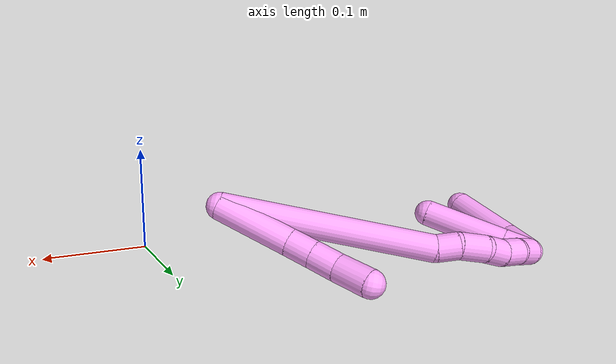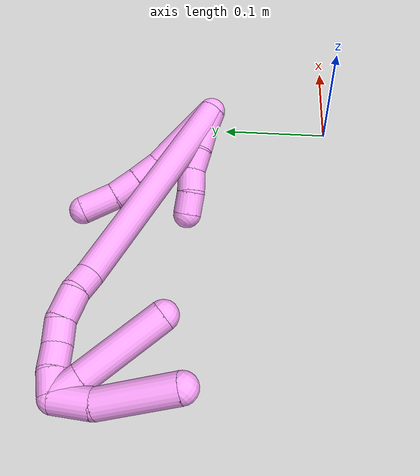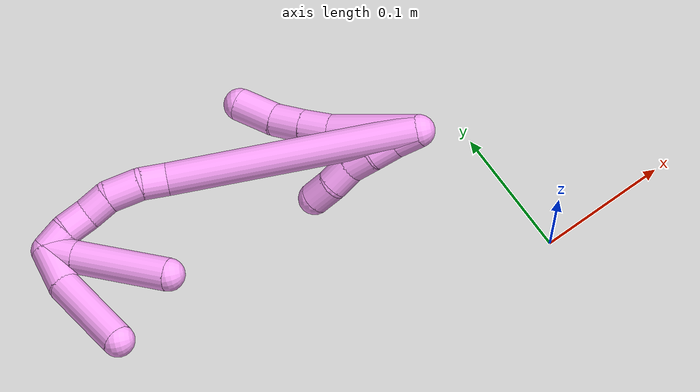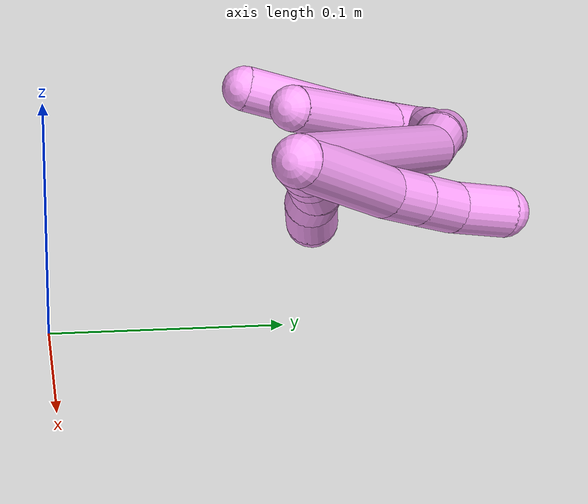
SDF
<sdf version="1.7">
 <world name="default">
  <model name="photoneo_s_sensor">
   <static>1</static>
   <pose>0 0 2 1.57079 1.57079 3.14159</pose>
   <link name="link">
    <inertial><mass>0.1</mass></inertial>
    <sensor name="sensor" type="depth">
     <update_rate>30</update_rate>
     <camera>
      <horizontal_fov>1.22</horizontal_fov>
      <image><width>1920</width><height>1200</height><format>B8G8R8</format></image>
      <clip><near>0.1</near><far>4</far></clip>
      <depth_camera><output>points</output></depth_camera>
     </camera>
     <plugin name="camera_plugin" filename="libgazebo_ros_depth_camera.so">
      <baseline>0.2</baseline>
      <alwaysOn>1</alwaysOn>
      <updateRate>0.0</updateRate>
      <cameraName>camera_ir</cameraName>
      <imageTopicName>/camera/color/image_raw</imageTopicName>
      <cameraInfoTopicName>/camera/color/camera_info</cameraInfoTopicName>
      <depthImageTopicName>/camera/depth/image_raw</depthImageTopicName>
      <depthImageCameraInfoTopicName>/camera/depth/camera_info</depthImageCameraInfoTopicName>
      <pointCloudTopicName>/camera/depth/points</pointCloudTopicName>
      <frameName>fr_optical</frameName>
      <pointCloudCutoff>0.1</pointCloudCutoff>
      <pointCloudCutoffMax>2.0</pointCloudCutoffMax>
      <distortionK1>0</distortionK1>
      <distortionK2>0</distortionK2>
      <distortionK3>0</distortionK3>
      <distortionT1>0</distortionT1>
      <distortionT2>0</distortionT2>
      <CxPrime>0</CxPrime>
      <Cx>0</Cx>
      <Cy>0</Cy>
      <focalLength>0</focalLength>
      <hackBaseline>0</hackBaseline>
     </plugin>
    </sensor>
   </link>
  </model>
  <model name="4">
   <static>0</static>
   <link name="4">
    <collision name="collision-cylinder-e_1_2_8">
     <pose>-0.010136 0.005351 0.033088 -0.160334 -0.29367 0.023763</pose>
     <geometry><cylinder><radius>0.0125</radius><length>0.070033</length></cylinder></geometry>
     <surface>
      <friction><ode><mu>1.16</mu><mu2>1.16</mu2><slip1>0</slip1><slip2>0</slip2></ode></friction>
      <contact><ode><kp>1e+06</kp><kd>1</kd><max_vel>0</max_vel><min_depth>0.001</min_depth></ode></contact>
     </surface>
    </collision>
    <visual name="visual-cylinder-e_1_2_8">
     <pose>-0.010136 0.005351 0.033088 -0.160334 -0.29367 0.023763</pose>
     <geometry><cylinder><radius>0.0125</radius><length>0.070033</length></cylinder></geometry>
     <material><ambient>1 0.65098 0.996078 1</ambient></material>
    </visual>
    <collision name="collision-cylinder-e_2_8_9">
     <pose>-0.023869 0.014289 0.076975 -0.320674 -0.306093 0.049883</pose>
     <geometry><cylinder><radius>0.0125</radius><length>0.02387</length></cylinder></geometry>
     <surface>
      <friction><ode><mu>1.16</mu><mu2>1.16</mu2><slip1>0</slip1><slip2>0</slip2></ode></friction>
      <contact><ode><kp>1e+06</kp><kd>1</kd><max_vel>0</max_vel><min_depth>0.001</min_depth></ode></contact>
     </surface>
    </collision>
    <visual name="visual-cylinder-e_2_8_9">
     <pose>-0.023869 0.014289 0.076975 -0.320674 -0.306093 0.049883</pose>
     <geometry><cylinder><radius>0.0125</radius><length>0.02387</length></cylinder></geometry>
     <material><ambient>1 0.65098 0.996078 1</ambient></material>
    </visual>
    <collision name="collision-cylinder-e_3_9_10">
     <pose>-0.031269 0.022006 0.09864 -0.363231 -0.316255 0.058549</pose>
     <geometry><cylinder><radius>0.0125</radius><length>0.024459</length></cylinder></geometry>
     <surface>
      <friction><ode><mu>1.16</mu><mu2>1.16</mu2><slip1>0</slip1><slip2>0</slip2></ode></friction>
      <contact><ode><kp>1e+06</kp><kd>1</kd><max_vel>0</max_vel><min_depth>0.001</min_depth></ode></contact>
     </surface>
    </collision>
    <visual name="visual-cylinder-e_3_9_10">
     <pose>-0.031269 0.022006 0.09864 -0.363231 -0.316255 0.058549</pose>
     <geometry><cylinder><radius>0.0125</radius><length>0.024459</length></cylinder></geometry>
     <material><ambient>1 0.65098 0.996078 1</ambient></material>
    </visual>
    <collision name="collision-cylinder-e_4_10_6">
     <pose>-0.039548 0.03413 0.1224 -0.55498 -0.286831 0.082219</pose>
     <geometry><cylinder><radius>0.0125</radius><length>0.031638</length></cylinder></geometry>
     <surface>
      <friction><ode><mu>1.16</mu><mu2>1.16</mu2><slip1>0</slip1><slip2>0</slip2></ode></friction>
      <contact><ode><kp>1e+06</kp><kd>1</kd><max_vel>0</max_vel><min_depth>0.001</min_depth></ode></contact>
     </surface>
    </collision>
    <visual name="visual-cylinder-e_4_10_6">
     <pose>-0.039548 0.03413 0.1224 -0.55498 -0.286831 0.082219</pose>
     <geometry><cylinder><radius>0.0125</radius><length>0.031638</length></cylinder></geometry>
     <material><ambient>1 0.65098 0.996078 1</ambient></material>
    </visual>
    <collision name="collision-cylinder-e_1_2_11">
     <pose>-0.001428 -0.002379 0.009607 0.24276 -0.143245 -0.017502</pose>
     <geometry><cylinder><radius>0.0125</radius><length>0.02</length></cylinder></geometry>
     <surface>
      <friction><ode><mu>1.16</mu><mu2>1.16</mu2><slip1>0</slip1><slip2>0</slip2></ode></friction>
      <contact><ode><kp>1e+06</kp><kd>1</kd><max_vel>0</max_vel><min_depth>0.001</min_depth></ode></contact>
     </surface>
    </collision>
    <visual name="visual-cylinder-e_1_2_11">
     <pose>-0.001428 -0.002379 0.009607 0.24276 -0.143245 -0.017502</pose>
     <geometry><cylinder><radius>0.0125</radius><length>0.02</length></cylinder></geometry>
     <material><ambient>1 0.65098 0.996078 1</ambient></material>
    </visual>
    <collision name="collision-cylinder-e_2_11_12">
     <pose>-0.00367 -0.007925 0.028665 0.323343 -0.081572 -0.013311</pose>
     <geometry><cylinder><radius>0.0125</radius><length>0.02</length></cylinder></geometry>
     <surface>
      <friction><ode><mu>1.16</mu><mu2>1.16</mu2><slip1>0</slip1><slip2>0</slip2></ode></friction>
      <contact><ode><kp>1e+06</kp><kd>1</kd><max_vel>0</max_vel><min_depth>0.001</min_depth></ode></contact>
     </surface>
    </collision>
    <visual name="visual-cylinder-e_2_11_12">
     <pose>-0.00367 -0.007925 0.028665 0.323343 -0.081572 -0.013311</pose>
     <geometry><cylinder><radius>0.0125</radius><length>0.02</length></cylinder></geometry>
     <material><ambient>1 0.65098 0.996078 1</ambient></material>
    </visual>
    <collision name="collision-cylinder-e_3_12_13">
     <pose>-0.006999 -0.014104 0.047314 0.316399 -0.254149 -0.040759</pose>
     <geometry><cylinder><radius>0.0125</radius><length>0.02</length></cylinder></geometry>
     <surface>
      <friction><ode><mu>1.16</mu><mu2>1.16</mu2><slip1>0</slip1><slip2>0</slip2></ode></friction>
      <contact><ode><kp>1e+06</kp><kd>1</kd><max_vel>0</max_vel><min_depth>0.001</min_depth></ode></contact>
     </surface>
    </collision>
    <visual name="visual-cylinder-e_3_12_13">
     <pose>-0.006999 -0.014104 0.047314 0.316399 -0.254149 -0.040759</pose>
     <geometry><cylinder><radius>0.0125</radius><length>0.02</length></cylinder></geometry>
     <material><ambient>1 0.65098 0.996078 1</ambient></material>
    </visual>
    <collision name="collision-cylinder-e_4_13_14">
     <pose>-0.011129 -0.022574 0.064733 0.586196 -0.16228 -0.049072</pose>
     <geometry><cylinder><radius>0.0125</radius><length>0.02</length></cylinder></geometry>
     <surface>
      <friction><ode><mu>1.16</mu><mu2>1.16</mu2><slip1>0</slip1><slip2>0</slip2></ode></friction>
      <contact><ode><kp>1e+06</kp><kd>1</kd><max_vel>0</max_vel><min_depth>0.001</min_depth></ode></contact>
     </surface>
    </collision>
    <visual name="visual-cylinder-e_4_13_14">
     <pose>-0.011129 -0.022574 0.064733 0.586196 -0.16228 -0.049072</pose>
     <geometry><cylinder><radius>0.0125</radius><length>0.02</length></cylinder></geometry>
     <material><ambient>1 0.65098 0.996078 1</ambient></material>
    </visual>
    <collision name="collision-cylinder-e_5_14_5">
     <pose>-0.016369 -0.032309 0.081235 0.476594 -0.370896 -0.09108</pose>
     <geometry><cylinder><radius>0.0125</radius><length>0.02</length></cylinder></geometry>
     <surface>
      <friction><ode><mu>1.16</mu><mu2>1.16</mu2><slip1>0</slip1><slip2>0</slip2></ode></friction>
      <contact><ode><kp>1e+06</kp><kd>1</kd><max_vel>0</max_vel><min_depth>0.001</min_depth></ode></contact>
     </surface>
    </collision>
    <visual name="visual-cylinder-e_5_14_5">
     <pose>-0.016369 -0.032309 0.081235 0.476594 -0.370896 -0.09108</pose>
     <geometry><cylinder><radius>0.0125</radius><length>0.02</length></cylinder></geometry>
     <material><ambient>1 0.65098 0.996078 1</ambient></material>
    </visual>
    <collision name="collision-cylinder-e_1_2_15">
     <pose>0.001097 2.4e-05 0.09615 -0.000248 0.01141 -1e-06</pose>
     <geometry><cylinder><radius>0.0125</radius><length>0.192313</length></cylinder></geometry>
     <surface>
      <friction><ode><mu>1.16</mu><mu2>1.16</mu2><slip1>0</slip1><slip2>0</slip2></ode></friction>
      <contact><ode><kp>1e+06</kp><kd>1</kd><max_vel>0</max_vel><min_depth>0.001</min_depth></ode></contact>
     </surface>
    </collision>
    <visual name="visual-cylinder-e_1_2_15">
     <pose>0.001097 2.4e-05 0.09615 -0.000248 0.01141 -1e-06</pose>
     <geometry><cylinder><radius>0.0125</radius><length>0.192313</length></cylinder></geometry>
     <material><ambient>1 0.65098 0.996078 1</ambient></material>
    </visual>
    <collision name="collision-cylinder-e_2_15_16">
     <pose>0.005502 0.000454 0.202102 -0.041441 0.325173 -0.006799</pose>
     <geometry><cylinder><radius>0.0125</radius><length>0.020706</length></cylinder></geometry>
     <surface>
      <friction><ode><mu>1.16</mu><mu2>1.16</mu2><slip1>0</slip1><slip2>0</slip2></ode></friction>
      <contact><ode><kp>1e+06</kp><kd>1</kd><max_vel>0</max_vel><min_depth>0.001</min_depth></ode></contact>
     </surface>
    </collision>
    <visual name="visual-cylinder-e_2_15_16">
     <pose>0.005502 0.000454 0.202102 -0.041441 0.325173 -0.006799</pose>
     <geometry><cylinder><radius>0.0125</radius><length>0.020706</length></cylinder></geometry>
     <material><ambient>1 0.65098 0.996078 1</ambient></material>
    </visual>
    <collision name="collision-cylinder-e_3_16_17">
     <pose>0.010328 -0.001467 0.224599 0.18133 0.117164 0.010664</pose>
     <geometry><cylinder><radius>0.0125</radius><length>0.025993</length></cylinder></geometry>
     <surface>
      <friction><ode><mu>1.16</mu><mu2>1.16</mu2><slip1>0</slip1><slip2>0</slip2></ode></friction>
      <contact><ode><kp>1e+06</kp><kd>1</kd><max_vel>0</max_vel><min_depth>0.001</min_depth></ode></contact>
     </surface>
    </collision>
    <visual name="visual-cylinder-e_3_16_17">
     <pose>0.010328 -0.001467 0.224599 0.18133 0.117164 0.010664</pose>
     <geometry><cylinder><radius>0.0125</radius><length>0.025993</length></cylinder></geometry>
     <material><ambient>1 0.65098 0.996078 1</ambient></material>
    </visual>
    <collision name="collision-cylinder-e_4_17_18">
     <pose>0.012535 -0.008709 0.246189 0.504815 0.067513 0.017418</pose>
     <geometry><cylinder><radius>0.0125</radius><length>0.02037</length></cylinder></geometry>
     <surface>
      <friction><ode><mu>1.16</mu><mu2>1.16</mu2><slip1>0</slip1><slip2>0</slip2></ode></friction>
      <contact><ode><kp>1e+06</kp><kd>1</kd><max_vel>0</max_vel><min_depth>0.001</min_depth></ode></contact>
     </surface>
    </collision>
    <visual name="visual-cylinder-e_4_17_18">
     <pose>0.012535 -0.008709 0.246189 0.504815 0.067513 0.017418</pose>
     <geometry><cylinder><radius>0.0125</radius><length>0.02037</length></cylinder></geometry>
     <material><ambient>1 0.65098 0.996078 1</ambient></material>
    </visual>
    <collision name="collision-cylinder-e_5_18_19">
     <pose>0.01624 -0.017762 0.263915 0.43817 0.300091 0.067298</pose>
     <geometry><cylinder><radius>0.0125</radius><length>0.020418</length></cylinder></geometry>
     <surface>
      <friction><ode><mu>1.16</mu><mu2>1.16</mu2><slip1>0</slip1><slip2>0</slip2></ode></friction>
      <contact><ode><kp>1e+06</kp><kd>1</kd><max_vel>0</max_vel><min_depth>0.001</min_depth></ode></contact>
     </surface>
    </collision>
    <visual name="visual-cylinder-e_5_18_19">
     <pose>0.01624 -0.017762 0.263915 0.43817 0.300091 0.067298</pose>
     <geometry><cylinder><radius>0.0125</radius><length>0.020418</length></cylinder></geometry>
     <material><ambient>1 0.65098 0.996078 1</ambient></material>
    </visual>
    <collision name="collision-cylinder-e_6_19_1">
     <pose>0.021678 -0.027933 0.280478 0.662614 0.242024 0.083613</pose>
     <geometry><cylinder><radius>0.0125</radius><length>0.0202</length></cylinder></geometry>
     <surface>
      <friction><ode><mu>1.16</mu><mu2>1.16</mu2><slip1>0</slip1><slip2>0</slip2></ode></friction>
      <contact><ode><kp>1e+06</kp><kd>1</kd><max_vel>0</max_vel><min_depth>0.001</min_depth></ode></contact>
     </surface>
    </collision>
    <visual name="visual-cylinder-e_6_19_1">
     <pose>0.021678 -0.027933 0.280478 0.662614 0.242024 0.083613</pose>
     <geometry><cylinder><radius>0.0125</radius><length>0.0202</length></cylinder></geometry>
     <material><ambient>1 0.65098 0.996078 1</ambient></material>
    </visual>
    <collision name="collision-cylinder-e_1_1_20">
     <pose>0.026958 -0.038087 0.277111 2.78593 0.236947 1.16991</pose>
     <geometry><cylinder><radius>0.0125</radius><length>0.024358</length></cylinder></geometry>
     <surface>
      <friction><ode><mu>1.16</mu><mu2>1.16</mu2><slip1>0</slip1><slip2>0</slip2></ode></friction>
      <contact><ode><kp>1e+06</kp><kd>1</kd><max_vel>0</max_vel><min_depth>0.001</min_depth></ode></contact>
     </surface>
    </collision>
    <visual name="visual-cylinder-e_1_1_20">
     <pose>0.026958 -0.038087 0.277111 2.78593 0.236947 1.16991</pose>
     <geometry><cylinder><radius>0.0125</radius><length>0.024358</length></cylinder></geometry>
     <material><ambient>1 0.65098 0.996078 1</ambient></material>
    </visual>
    <collision name="collision-cylinder-e_2_20_4">
     <pose>0.038833 -0.05396 0.231213 2.81596 0.240723 1.26931</pose>
     <geometry><cylinder><radius>0.0125</radius><length>0.075642</length></cylinder></geometry>
     <surface>
      <friction><ode><mu>1.16</mu><mu2>1.16</mu2><slip1>0</slip1><slip2>0</slip2></ode></friction>
      <contact><ode><kp>1e+06</kp><kd>1</kd><max_vel>0</max_vel><min_depth>0.001</min_depth></ode></contact>
     </surface>
    </collision>
    <visual name="visual-cylinder-e_2_20_4">
     <pose>0.038833 -0.05396 0.231213 2.81596 0.240723 1.26931</pose>
     <geometry><cylinder><radius>0.0125</radius><length>0.075642</length></cylinder></geometry>
     <material><ambient>1 0.65098 0.996078 1</ambient></material>
    </visual>
    <collision name="collision-cylinder-e_1_1_21">
     <pose>0.03191 -0.047346 0.282561 1.97019 0.493386 0.725635</pose>
     <geometry><cylinder><radius>0.0125</radius><length>0.032983</length></cylinder></geometry>
     <surface>
      <friction><ode><mu>1.16</mu><mu2>1.16</mu2><slip1>0</slip1><slip2>0</slip2></ode></friction>
      <contact><ode><kp>1e+06</kp><kd>1</kd><max_vel>0</max_vel><min_depth>0.001</min_depth></ode></contact>
     </surface>
    </collision>
    <visual name="visual-cylinder-e_1_1_21">
     <pose>0.03191 -0.047346 0.282561 1.97019 0.493386 0.725635</pose>
     <geometry><cylinder><radius>0.0125</radius><length>0.032983</length></cylinder></geometry>
     <material><ambient>1 0.65098 0.996078 1</ambient></material>
    </visual>
    <collision name="collision-cylinder-e_2_21_3">
     <pose>0.056341 -0.082174 0.25725 2.31283 0.519021 1.08614</pose>
     <geometry><cylinder><radius>0.0125</radius><length>0.067017</length></cylinder></geometry>
     <surface>
      <friction><ode><mu>1.16</mu><mu2>1.16</mu2><slip1>0</slip1><slip2>0</slip2></ode></friction>
      <contact><ode><kp>1e+06</kp><kd>1</kd><max_vel>0</max_vel><min_depth>0.001</min_depth></ode></contact>
     </surface>
    </collision>
    <visual name="visual-cylinder-e_2_21_3">
     <pose>0.056341 -0.082174 0.25725 2.31283 0.519021 1.08614</pose>
     <geometry><cylinder><radius>0.0125</radius><length>0.067017</length></cylinder></geometry>
     <material><ambient>1 0.65098 0.996078 1</ambient></material>
    </visual>
    <collision name="collision-sphere-3">
     <pose>0.072963 -0.10362 0.237587 0 -0 0</pose>
     <geometry><sphere><radius>0.0125</radius></sphere></geometry>
     <surface>
      <friction><ode><mu>1.16</mu><mu2>1.16</mu2><slip1>0</slip1><slip2>0</slip2></ode></friction>
      <contact><ode><kp>1e+06</kp><kd>1</kd><max_vel>0</max_vel><min_depth>0.001</min_depth></ode></contact>
     </surface>
    </collision>
    <visual name="visual-sphere-3">
     <pose>0.072963 -0.10362 0.237587 0 -0 0</pose>
     <geometry><sphere><radius>0.0125</radius></sphere></geometry>
     <material><ambient>1 0.65098 0.996078 1</ambient></material>
    </visual>
    <collision name="collision-sphere-21">
     <pose>0.03972 -0.060728 0.276913 0 -0 0</pose>
     <geometry><sphere><radius>0.0125</radius></sphere></geometry>
     <surface>
      <friction><ode><mu>1.16</mu><mu2>1.16</mu2><slip1>0</slip1><slip2>0</slip2></ode></friction>
      <contact><ode><kp>1e+06</kp><kd>1</kd><max_vel>0</max_vel><min_depth>0.001</min_depth></ode></contact>
     </surface>
    </collision>
    <visual name="visual-sphere-21">
     <pose>0.03972 -0.060728 0.276913 0 -0 0</pose>
     <geometry><sphere><radius>0.0125</radius></sphere></geometry>
     <material><ambient>1 0.65098 0.996078 1</ambient></material>
    </visual>
    <collision name="collision-sphere-4">
     <pose>0.04785 -0.06571 0.196412 0 -0 0</pose>
     <geometry><sphere><radius>0.0125</radius></sphere></geometry>
     <surface>
      <friction><ode><mu>1.16</mu><mu2>1.16</mu2><slip1>0</slip1><slip2>0</slip2></ode></friction>
      <contact><ode><kp>1e+06</kp><kd>1</kd><max_vel>0</max_vel><min_depth>0.001</min_depth></ode></contact>
     </surface>
    </collision>
    <visual name="visual-sphere-4">
     <pose>0.04785 -0.06571 0.196412 0 -0 0</pose>
     <geometry><sphere><radius>0.0125</radius></sphere></geometry>
     <material><ambient>1 0.65098 0.996078 1</ambient></material>
    </visual>
    <collision name="collision-sphere-20">
     <pose>0.029817 -0.04221 0.266013 0 -0 0</pose>
     <geometry><sphere><radius>0.0125</radius></sphere></geometry>
     <surface>
      <friction><ode><mu>1.16</mu><mu2>1.16</mu2><slip1>0</slip1><slip2>0</slip2></ode></friction>
      <contact><ode><kp>1e+06</kp><kd>1</kd><max_vel>0</max_vel><min_depth>0.001</min_depth></ode></contact>
     </surface>
    </collision>
    <visual name="visual-sphere-20">
     <pose>0.029817 -0.04221 0.266013 0 -0 0</pose>
     <geometry><sphere><radius>0.0125</radius></sphere></geometry>
     <material><ambient>1 0.65098 0.996078 1</ambient></material>
    </visual>
    <collision name="collision-sphere-11">
     <pose>-0.002855 -0.004758 0.019215 0 -0 0</pose>
     <geometry><sphere><radius>0.0125</radius></sphere></geometry>
     <surface>
      <friction><ode><mu>1.16</mu><mu2>1.16</mu2><slip1>0</slip1><slip2>0</slip2></ode></friction>
      <contact><ode><kp>1e+06</kp><kd>1</kd><max_vel>0</max_vel><min_depth>0.001</min_depth></ode></contact>
     </surface>
    </collision>
    <visual name="visual-sphere-11">
     <pose>-0.002855 -0.004758 0.019215 0 -0 0</pose>
     <geometry><sphere><radius>0.0125</radius></sphere></geometry>
     <material><ambient>1 0.65098 0.996078 1</ambient></material>
    </visual>
    <collision name="collision-sphere-6">
     <pose>-0.044023 0.042125 0.135295 0 -0 0</pose>
     <geometry><sphere><radius>0.0125</radius></sphere></geometry>
     <surface>
      <friction><ode><mu>1.16</mu><mu2>1.16</mu2><slip1>0</slip1><slip2>0</slip2></ode></friction>
      <contact><ode><kp>1e+06</kp><kd>1</kd><max_vel>0</max_vel><min_depth>0.001</min_depth></ode></contact>
     </surface>
    </collision>
    <visual name="visual-sphere-6">
     <pose>-0.044023 0.042125 0.135295 0 -0 0</pose>
     <geometry><sphere><radius>0.0125</radius></sphere></geometry>
     <material><ambient>1 0.65098 0.996078 1</ambient></material>
    </visual>
    <collision name="collision-sphere-10">
     <pose>-0.035072 0.026135 0.109505 0 -0 0</pose>
     <geometry><sphere><radius>0.0125</radius></sphere></geometry>
     <surface>
      <friction><ode><mu>1.16</mu><mu2>1.16</mu2><slip1>0</slip1><slip2>0</slip2></ode></friction>
      <contact><ode><kp>1e+06</kp><kd>1</kd><max_vel>0</max_vel><min_depth>0.001</min_depth></ode></contact>
     </surface>
    </collision>
    <visual name="visual-sphere-10">
     <pose>-0.035072 0.026135 0.109505 0 -0 0</pose>
     <geometry><sphere><radius>0.0125</radius></sphere></geometry>
     <material><ambient>1 0.65098 0.996078 1</ambient></material>
    </visual>
    <collision name="collision-sphere-9">
     <pose>-0.027465 0.017876 0.087775 0 -0 0</pose>
     <geometry><sphere><radius>0.0125</radius></sphere></geometry>
     <surface>
      <friction><ode><mu>1.16</mu><mu2>1.16</mu2><slip1>0</slip1><slip2>0</slip2></ode></friction>
      <contact><ode><kp>1e+06</kp><kd>1</kd><max_vel>0</max_vel><min_depth>0.001</min_depth></ode></contact>
     </surface>
    </collision>
    <visual name="visual-sphere-9">
     <pose>-0.027465 0.017876 0.087775 0 -0 0</pose>
     <geometry><sphere><radius>0.0125</radius></sphere></geometry>
     <material><ambient>1 0.65098 0.996078 1</ambient></material>
    </visual>
    <collision name="collision-sphere-2">
     <geometry><sphere><radius>0.0125</radius></sphere></geometry>
     <surface>
      <friction><ode><mu>1.16</mu><mu2>1.16</mu2><slip1>0</slip1><slip2>0</slip2></ode></friction>
      <contact><ode><kp>1e+06</kp><kd>1</kd><max_vel>0</max_vel><min_depth>0.001</min_depth></ode></contact>
     </surface>
    </collision>
    <visual name="visual-sphere-2">
     <geometry><sphere><radius>0.0125</radius></sphere></geometry>
     <material><ambient>1 0.65098 0.996078 1</ambient></material>
    </visual>
    <collision name="collision-sphere-19">
     <pose>0.019258 -0.0219 0.272747 0 -0 0</pose>
     <geometry><sphere><radius>0.0125</radius></sphere></geometry>
     <surface>
      <friction><ode><mu>1.16</mu><mu2>1.16</mu2><slip1>0</slip1><slip2>0</slip2></ode></friction>
      <contact><ode><kp>1e+06</kp><kd>1</kd><max_vel>0</max_vel><min_depth>0.001</min_depth></ode></contact>
     </surface>
    </collision>
    <visual name="visual-sphere-19">
     <pose>0.019258 -0.0219 0.272747 0 -0 0</pose>
     <geometry><sphere><radius>0.0125</radius></sphere></geometry>
     <material><ambient>1 0.65098 0.996078 1</ambient></material>
    </visual>
    <collision name="collision-sphere-8">
     <pose>-0.020272 0.010702 0.066175 0 -0 0</pose>
     <geometry><sphere><radius>0.0125</radius></sphere></geometry>
     <surface>
      <friction><ode><mu>1.16</mu><mu2>1.16</mu2><slip1>0</slip1><slip2>0</slip2></ode></friction>
      <contact><ode><kp>1e+06</kp><kd>1</kd><max_vel>0</max_vel><min_depth>0.001</min_depth></ode></contact>
     </surface>
    </collision>
    <visual name="visual-sphere-8">
     <pose>-0.020272 0.010702 0.066175 0 -0 0</pose>
     <geometry><sphere><radius>0.0125</radius></sphere></geometry>
     <material><ambient>1 0.65098 0.996078 1</ambient></material>
    </visual>
    <collision name="collision-sphere-12">
     <pose>-0.004485 -0.011092 0.038115 0 -0 0</pose>
     <geometry><sphere><radius>0.0125</radius></sphere></geometry>
     <surface>
      <friction><ode><mu>1.16</mu><mu2>1.16</mu2><slip1>0</slip1><slip2>0</slip2></ode></friction>
      <contact><ode><kp>1e+06</kp><kd>1</kd><max_vel>0</max_vel><min_depth>0.001</min_depth></ode></contact>
     </surface>
    </collision>
    <visual name="visual-sphere-12">
     <pose>-0.004485 -0.011092 0.038115 0 -0 0</pose>
     <geometry><sphere><radius>0.0125</radius></sphere></geometry>
     <material><ambient>1 0.65098 0.996078 1</ambient></material>
    </visual>
    <collision name="collision-sphere-13">
     <pose>-0.009513 -0.017115 0.056512 0 -0 0</pose>
     <geometry><sphere><radius>0.0125</radius></sphere></geometry>
     <surface>
      <friction><ode><mu>1.16</mu><mu2>1.16</mu2><slip1>0</slip1><slip2>0</slip2></ode></friction>
      <contact><ode><kp>1e+06</kp><kd>1</kd><max_vel>0</max_vel><min_depth>0.001</min_depth></ode></contact>
     </surface>
    </collision>
    <visual name="visual-sphere-13">
     <pose>-0.009513 -0.017115 0.056512 0 -0 0</pose>
     <geometry><sphere><radius>0.0125</radius></sphere></geometry>
     <material><ambient>1 0.65098 0.996078 1</ambient></material>
    </visual>
    <collision name="collision-sphere-14">
     <pose>-0.012745 -0.028034 0.072954 0 -0 0</pose>
     <geometry><sphere><radius>0.0125</radius></sphere></geometry>
     <surface>
      <friction><ode><mu>1.16</mu><mu2>1.16</mu2><slip1>0</slip1><slip2>0</slip2></ode></friction>
      <contact><ode><kp>1e+06</kp><kd>1</kd><max_vel>0</max_vel><min_depth>0.001</min_depth></ode></contact>
     </surface>
    </collision>
    <visual name="visual-sphere-14">
     <pose>-0.012745 -0.028034 0.072954 0 -0 0</pose>
     <geometry><sphere><radius>0.0125</radius></sphere></geometry>
     <material><ambient>1 0.65098 0.996078 1</ambient></material>
    </visual>
    <collision name="collision-sphere-5">
     <pose>-0.019994 -0.036585 0.089517 0 -0 0</pose>
     <geometry><sphere><radius>0.0125</radius></sphere></geometry>
     <surface>
      <friction><ode><mu>1.16</mu><mu2>1.16</mu2><slip1>0</slip1><slip2>0</slip2></ode></friction>
      <contact><ode><kp>1e+06</kp><kd>1</kd><max_vel>0</max_vel><min_depth>0.001</min_depth></ode></contact>
     </surface>
    </collision>
    <visual name="visual-sphere-5">
     <pose>-0.019994 -0.036585 0.089517 0 -0 0</pose>
     <geometry><sphere><radius>0.0125</radius></sphere></geometry>
     <material><ambient>1 0.65098 0.996078 1</ambient></material>
    </visual>
    <collision name="collision-sphere-15">
     <pose>0.002194 4.8e-05 0.1923 0 -0 0</pose>
     <geometry><sphere><radius>0.0125</radius></sphere></geometry>
     <surface>
      <friction><ode><mu>1.16</mu><mu2>1.16</mu2><slip1>0</slip1><slip2>0</slip2></ode></friction>
      <contact><ode><kp>1e+06</kp><kd>1</kd><max_vel>0</max_vel><min_depth>0.001</min_depth></ode></contact>
     </surface>
    </collision>
    <visual name="visual-sphere-15">
     <pose>0.002194 4.8e-05 0.1923 0 -0 0</pose>
     <geometry><sphere><radius>0.0125</radius></sphere></geometry>
     <material><ambient>1 0.65098 0.996078 1</ambient></material>
    </visual>
    <collision name="collision-sphere-16">
     <pose>0.008809 0.000861 0.211904 0 -0 0</pose>
     <geometry><sphere><radius>0.0125</radius></sphere></geometry>
     <surface>
      <friction><ode><mu>1.16</mu><mu2>1.16</mu2><slip1>0</slip1><slip2>0</slip2></ode></friction>
      <contact><ode><kp>1e+06</kp><kd>1</kd><max_vel>0</max_vel><min_depth>0.001</min_depth></ode></contact>
     </surface>
    </collision>
    <visual name="visual-sphere-16">
     <pose>0.008809 0.000861 0.211904 0 -0 0</pose>
     <geometry><sphere><radius>0.0125</radius></sphere></geometry>
     <material><ambient>1 0.65098 0.996078 1</ambient></material>
    </visual>
    <collision name="collision-sphere-17">
     <pose>0.011848 -0.003795 0.237295 0 -0 0</pose>
     <geometry><sphere><radius>0.0125</radius></sphere></geometry>
     <surface>
      <friction><ode><mu>1.16</mu><mu2>1.16</mu2><slip1>0</slip1><slip2>0</slip2></ode></friction>
      <contact><ode><kp>1e+06</kp><kd>1</kd><max_vel>0</max_vel><min_depth>0.001</min_depth></ode></contact>
     </surface>
    </collision>
    <visual name="visual-sphere-17">
     <pose>0.011848 -0.003795 0.237295 0 -0 0</pose>
     <geometry><sphere><radius>0.0125</radius></sphere></geometry>
     <material><ambient>1 0.65098 0.996078 1</ambient></material>
    </visual>
    <collision name="collision-sphere-18">
     <pose>0.013222 -0.013624 0.255084 0 -0 0</pose>
     <geometry><sphere><radius>0.0125</radius></sphere></geometry>
     <surface>
      <friction><ode><mu>1.16</mu><mu2>1.16</mu2><slip1>0</slip1><slip2>0</slip2></ode></friction>
      <contact><ode><kp>1e+06</kp><kd>1</kd><max_vel>0</max_vel><min_depth>0.001</min_depth></ode></contact>
     </surface>
    </collision>
    <visual name="visual-sphere-18">
     <pose>0.013222 -0.013624 0.255084 0 -0 0</pose>
     <geometry><sphere><radius>0.0125</radius></sphere></geometry>
     <material><ambient>1 0.65098 0.996078 1</ambient></material>
    </visual>
    <collision name="collision-sphere-1">
     <pose>0.024099 -0.033965 0.288209 0 -0 0</pose>
     <geometry><sphere><radius>0.0125</radius></sphere></geometry>
     <surface>
      <friction><ode><mu>1.16</mu><mu2>1.16</mu2><slip1>0</slip1><slip2>0</slip2></ode></friction>
      <contact><ode><kp>1e+06</kp><kd>1</kd><max_vel>0</max_vel><min_depth>0.001</min_depth></ode></contact>
     </surface>
    </collision>
    <visual name="visual-sphere-1">
     <pose>0.024099 -0.033965 0.288209 0 -0 0</pose>
     <geometry><sphere><radius>0.0125</radius></sphere></geometry>
     <material><ambient>1 0.65098 0.996078 1</ambient></material>
    </visual>
    <inertial>
     <pose>0.007937 -0.016611 0.14727 0 -0 0</pose>
     <mass>0.75</mass>
     <inertia>
      <ixx>0.000745</ixx>
      <ixy>0</ixy>
      <ixz>0</ixz>
      <iyy>0.000698</iyy>
      <iyz>0</iyz>
      <izz>3.9e-05</izz>
     </inertia>
    </inertial>
   </link>
   <pose>-0.041193 0.112794 0.061948 2.03243 -1.10543 -2.48718</pose>
  </model>
 </world>
</sdf>
